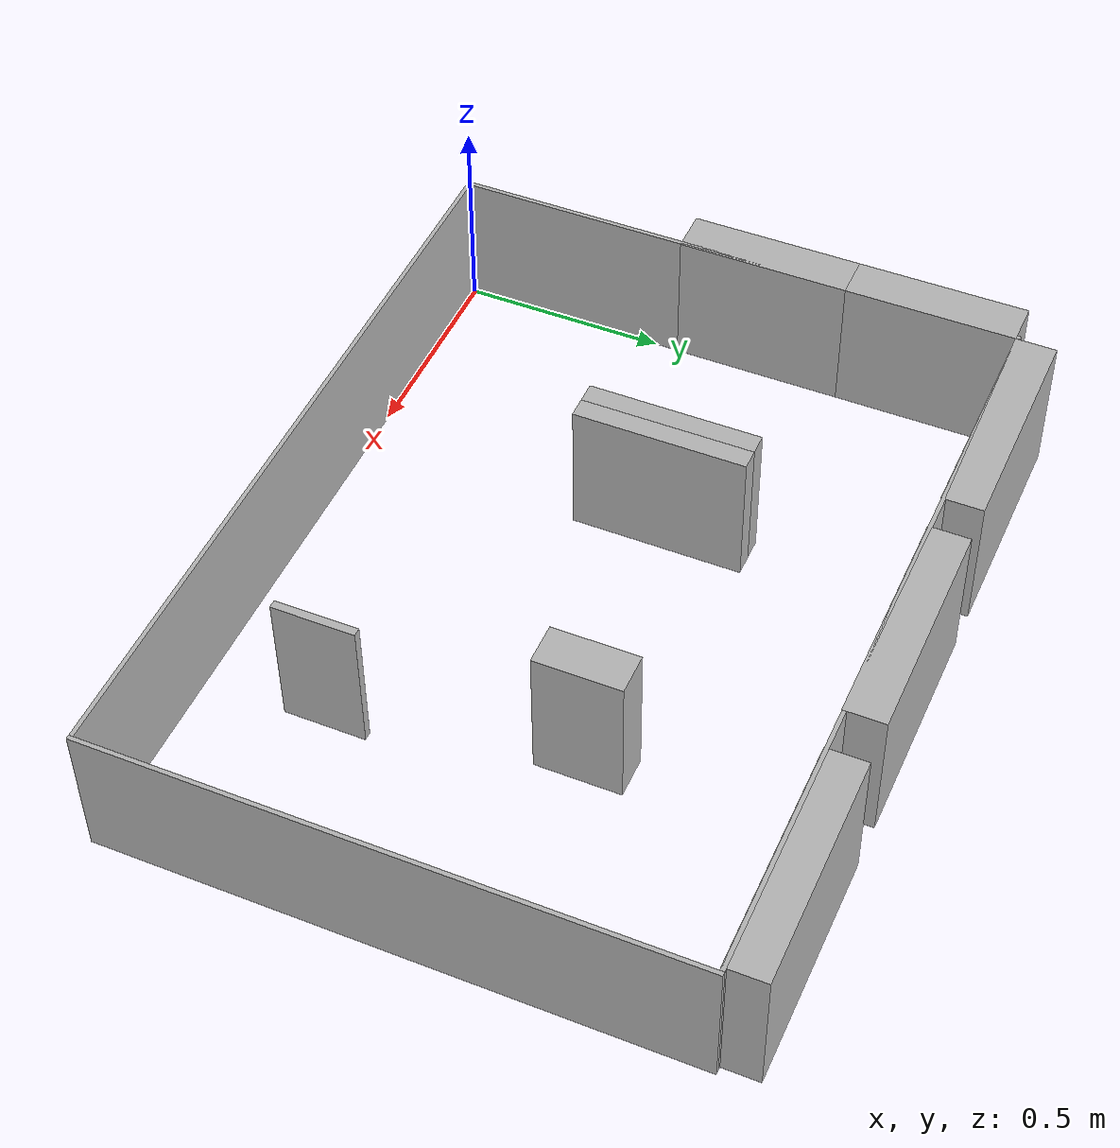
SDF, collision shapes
<?xml version="1.0" ?>
<sdf version="1.8">
  <model name="shop">
    <static>true</static>
    <link name="link">
      <pose>0 0 0 0 0 0</pose>
      <visual name="visual">
        <geometry>
          <mesh>
            <uri>meshes/shop.dae</uri>
            <scale>1.044444 1 1</scale>
          </mesh>
        </geometry>
      </visual>

      <!-- Perimeter walls -->
      <collision name="wall_south">
        <pose>0.938101 -0.00499 0.175 0 0 0</pose>
        <geometry>
          <box>
            <size>1.876202 0.00998 0.35</size>
          </box>
        </geometry>
      </collision>
      <collision name="wall_north">
        <pose>0.938083 1.402159 0.175 0 0 0</pose>
        <geometry>
          <box>
            <size>1.876202 0.00998 0.35</size>
          </box>
        </geometry>
      </collision>
      <collision name="wall_west">
        <pose>-0.005212 0.698584 0.175 0 0 0</pose>
        <geometry>
          <box>
            <size>0.010423 1.417131 0.35</size>
          </box>
        </geometry>
      </collision>
      <collision name="wall_east">
        <pose>1.881414 0.698584 0.175 0 0 0</pose>
        <geometry>
          <box>
            <size>0.010423 1.417131 0.35</size>
          </box>
        </geometry>
      </collision>

      <!-- divider: L = thin bar along +x + thin bar along +y (local AABBs → same DAE matrix) -->
      <collision name="divider_arm_y">
        <pose>1.404525 0.299388 0.175 0 0 0</pose>
        <geometry>
          <box>
            <size>0.02 0.199596 0.35</size>
          </box>
        </geometry>
      </collision>

      <!-- section_* (DAE node sectinon_meat = meat) -->
      <collision name="section_meat">
        <pose>0.277776 1.445972 0.175 0 0 0</pose>
        <geometry>
          <box>
            <size>0.553494 0.099798 0.35</size>
          </box>
        </geometry>
      </collision>
      <collision name="section_seafood">
        <pose>0.922043 1.445972 0.175 0 0 0</pose>
        <geometry>
          <box>
            <size>0.553946 0.099798 0.35</size>
          </box>
        </geometry>
      </collision>
      <collision name="section_frizer">
        <pose>0.610 0.762248 0.175 0 0 0</pose>
        <geometry>
          <box>
            <size>0.050 0.419503 0.35</size>
          </box>
        </geometry>
      </collision>
      <collision name="section_refriger">
        <pose>0.560 0.762248 0.175 0 0 0</pose>
        <geometry>
          <box>
            <size>0.050 0.419503 0.35</size>
          </box>
        </geometry>
      </collision>
      <collision name="section_electronics">
        <pose>-0.051088 0.767819 0.175 0 0 0</pose>
        <geometry>
          <box>
            <size>0.104233 0.419503 0.35</size>
          </box>
        </geometry>
      </collision>
      <collision name="section_snacks">
        <pose>-0.051088 1.187322 0.175 0 0 0</pose>
        <geometry>
          <box>
            <size>0.104233 0.419503 0.35</size>
          </box>
        </geometry>
      </collision>
      <collision name="section_vegetable">
        <pose>1.585925 1.445972 0.175 0 0 0</pose>
        <geometry>
          <box>
            <size>0.564466 0.099798 0.35</size>
          </box>
        </geometry>
      </collision>
      <collision name="section_beverage">
        <pose>1.281 0.867212 0.175 0 0 0</pose>
        <geometry>
          <box>
            <size>0.100 0.209576 0.35</size>
          </box>
        </geometry>
      </collision>
    </link>
  </model>
</sdf>
